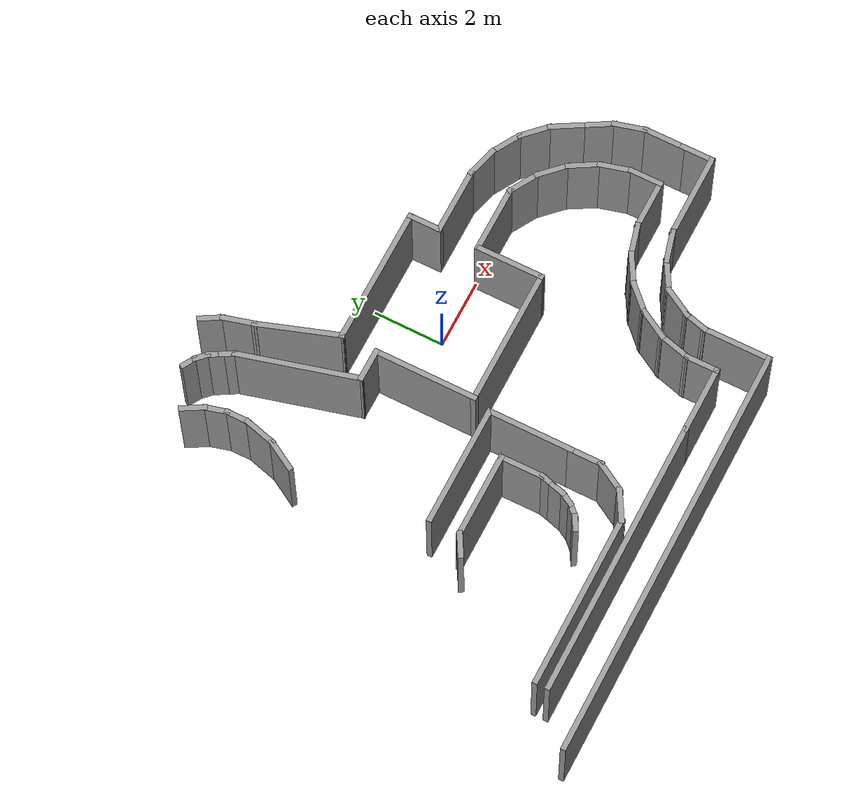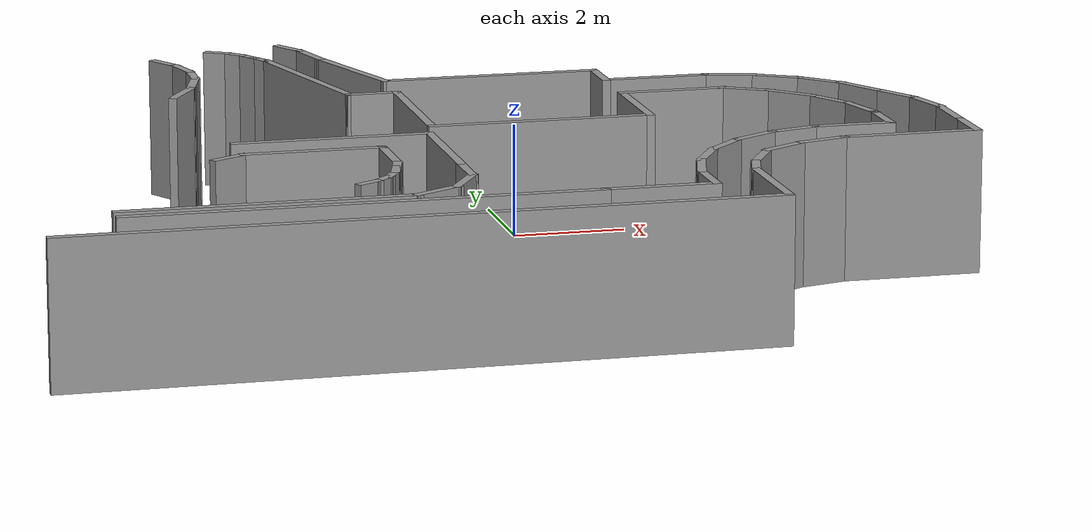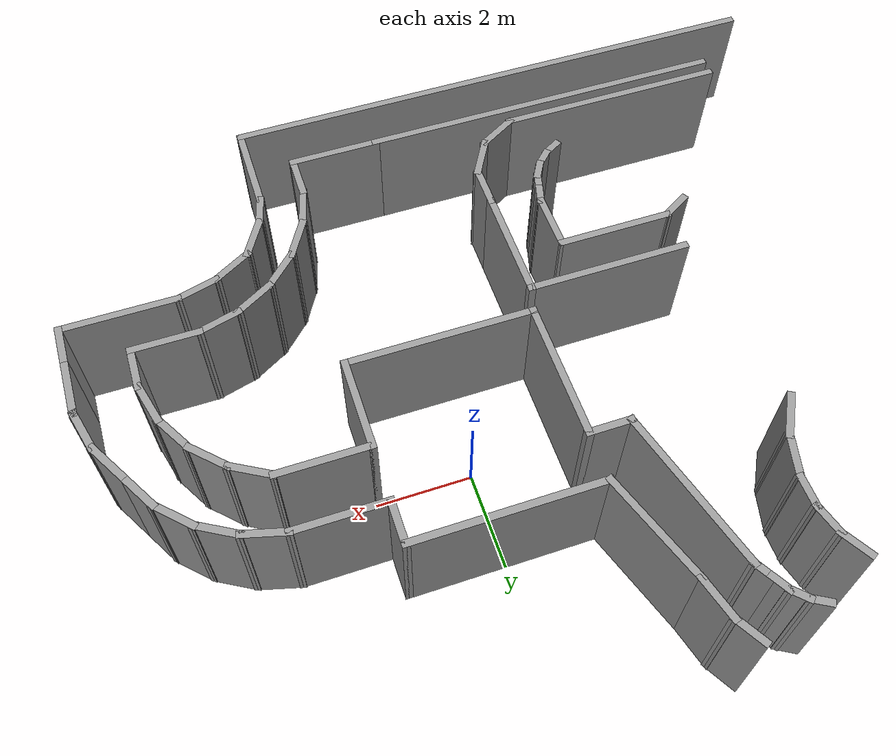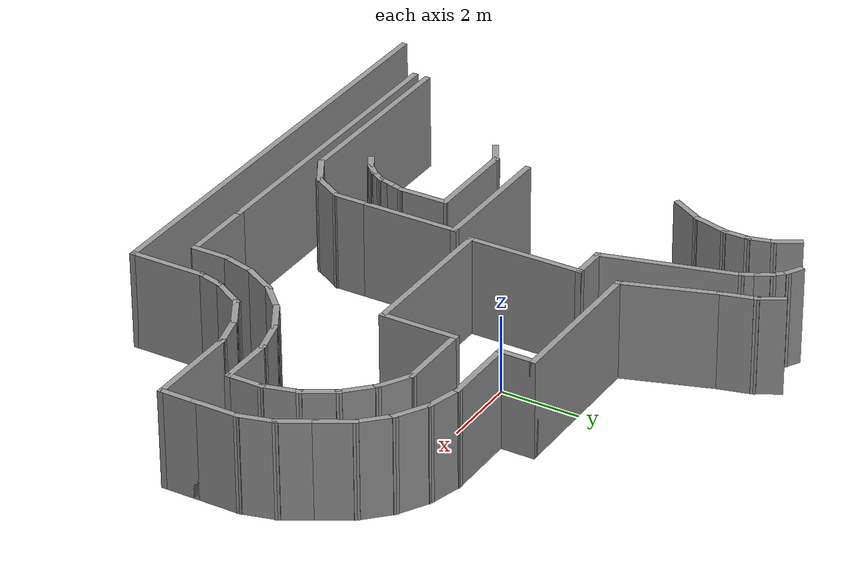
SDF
<sdf version="1.7">
 <model name="labirinth">
  <pose>-1.55942 0.15521 0 0 -0 0</pose>
  <link name="Wall_108">
   <collision name="Wall_108_Collision">
    <geometry><box><size>0.75 0.15 2.5</size></box></geometry>
    <pose>0 0 1.25 0 -0 0</pose>
   </collision>
   <visual name="Wall_108_Visual">
    <pose>0 0 1.25 0 -0 0</pose>
    <geometry><box><size>0.75 0.15 2.5</size></box></geometry>
    <material>
     <script><uri>file://media/materials/scripts/gazebo.material</uri><name>Gazebo/Grey</name></script>
     <ambient>1 1 1 1</ambient>
    </material>
    <meta><layer>0</layer></meta>
   </visual>
   <pose>-1.46149 5.03794 0 0 -0 -1.0472</pose>
  </link>
  <link name="Wall_109">
   <collision name="Wall_109_Collision">
    <geometry><box><size>1 0.15 2.5</size></box></geometry>
    <pose>0 0 1.25 0 -0 0</pose>
   </collision>
   <visual name="Wall_109_Visual">
    <pose>0 0 1.25 0 -0 0</pose>
    <geometry><box><size>1 0.15 2.5</size></box></geometry>
    <material>
     <script><uri>file://media/materials/scripts/gazebo.material</uri><name>Gazebo/Grey</name></script>
     <ambient>1 1 1 1</ambient>
    </material>
    <meta><layer>0</layer></meta>
   </visual>
   <pose>-1.20149 4.36761 0 0 -0 -1.309</pose>
  </link>
  <link name="Wall_11">
   <collision name="Wall_11_Collision">
    <geometry><box><size>1 0.15 2.5</size></box></geometry>
    <pose>0 0 1.25 0 -0 0</pose>
   </collision>
   <visual name="Wall_11_Visual">
    <pose>0 0 1.25 0 -0 0</pose>
    <geometry><box><size>1 0.15 2.5</size></box></geometry>
    <material>
     <script><uri>file://media/materials/scripts/gazebo.material</uri><name>Gazebo/Grey</name></script>
     <ambient>1 1 1 1</ambient>
    </material>
    <meta><layer>0</layer></meta>
   </visual>
   <pose>5.71748 -0.43771 0 0 -0 -0.523599</pose>
  </link>
  <link name="Wall_110">
   <collision name="Wall_110_Collision">
    <geometry><box><size>2.45465 0.15 2.5</size></box></geometry>
    <pose>0 0 1.25 0 -0 0</pose>
   </collision>
   <visual name="Wall_110_Visual">
    <pose>0 0 1.25 0 -0 0</pose>
    <geometry><box><size>2.45465 0.15 2.5</size></box></geometry>
    <material>
     <script><uri>file://media/materials/scripts/gazebo.material</uri><name>Gazebo/Grey</name></script>
     <ambient>1 1 1 1</ambient>
    </material>
    <meta><layer>0</layer></meta>
   </visual>
   <pose>-0.721037 2.86594 0 0 -0 -1.2435</pose>
  </link>
  <link name="Wall_112">
   <collision name="Wall_112_Collision">
    <geometry><box><size>3 0.15 2.5</size></box></geometry>
    <pose>0 0 1.25 0 -0 0</pose>
   </collision>
   <visual name="Wall_112_Visual">
    <pose>0 0 1.25 0 -0 0</pose>
    <geometry><box><size>3 0.15 2.5</size></box></geometry>
    <material>
     <script><uri>file://media/materials/scripts/gazebo.material</uri><name>Gazebo/Grey</name></script>
     <ambient>1 1 1 1</ambient>
    </material>
    <meta><layer>0</layer></meta>
   </visual>
   <pose>-0.350577 -0.65021 0 0 -0 1.5708</pose>
  </link>
  <link name="Wall_113">
   <collision name="Wall_113_Collision">
    <geometry><box><size>1 0.15 2.5</size></box></geometry>
    <pose>0 0 1.25 0 -0 0</pose>
   </collision>
   <visual name="Wall_113_Visual">
    <pose>0 0 1.25 0 -0 0</pose>
    <geometry><box><size>1 0.15 2.5</size></box></geometry>
    <material>
     <script><uri>file://media/materials/scripts/gazebo.material</uri><name>Gazebo/Grey</name></script>
     <ambient>1 1 1 1</ambient>
    </material>
    <meta><layer>0</layer></meta>
   </visual>
   <pose>-0.775577 0.77479 0 0 -0 3.14159</pose>
  </link>
  <link name="Wall_114">
   <collision name="Wall_114_Collision">
    <geometry><box><size>3.5 0.15 2.5</size></box></geometry>
    <pose>0 0 1.25 0 -0 0</pose>
   </collision>
   <visual name="Wall_114_Visual">
    <pose>0 0 1.25 0 -0 0</pose>
    <geometry><box><size>3.5 0.15 2.5</size></box></geometry>
    <material>
     <script><uri>file://media/materials/scripts/gazebo.material</uri><name>Gazebo/Grey</name></script>
     <ambient>1 1 1 1</ambient>
    </material>
    <meta><layer>0</layer></meta>
   </visual>
   <pose>-1.6341 2.39272 0 0 -0 1.8326</pose>
  </link>
  <link name="Wall_115">
   <collision name="Wall_115_Collision">
    <geometry><box><size>0.5 0.15 2.5</size></box></geometry>
    <pose>0 0 1.25 0 -0 0</pose>
   </collision>
   <visual name="Wall_115_Visual">
    <pose>0 0 1.25 0 -0 0</pose>
    <geometry><box><size>0.5 0.15 2.5</size></box></geometry>
    <material>
     <script><uri>file://media/materials/scripts/gazebo.material</uri><name>Gazebo/Grey</name></script>
     <ambient>1 1 1 1</ambient>
    </material>
    <meta><layer>0</layer></meta>
   </visual>
   <pose>-2.15512 4.1622 0 0 -0 2.0944</pose>
  </link>
  <link name="Wall_116">
   <collision name="Wall_116_Collision">
    <geometry><box><size>0.5 0.15 2.5</size></box></geometry>
    <pose>0 0 1.25 0 -0 0</pose>
   </collision>
   <visual name="Wall_116_Visual">
    <pose>0 0 1.25 0 -0 0</pose>
    <geometry><box><size>0.5 0.15 2.5</size></box></geometry>
    <material>
     <script><uri>file://media/materials/scripts/gazebo.material</uri><name>Gazebo/Grey</name></script>
     <ambient>1 1 1 1</ambient>
    </material>
    <meta><layer>0</layer></meta>
   </visual>
   <pose>-2.33012 4.4653 0 0 -0 2.0944</pose>
  </link>
  <link name="Wall_117">
   <collision name="Wall_117_Collision">
    <geometry><box><size>0.5 0.15 2.5</size></box></geometry>
    <pose>0 0 1.25 0 -0 0</pose>
   </collision>
   <visual name="Wall_117_Visual">
    <pose>0 0 1.25 0 -0 0</pose>
    <geometry><box><size>0.5 0.15 2.5</size></box></geometry>
    <material>
     <script><uri>file://media/materials/scripts/gazebo.material</uri><name>Gazebo/Grey</name></script>
     <ambient>1 1 1 1</ambient>
    </material>
    <meta><layer>0</layer></meta>
   </visual>
   <pose>-2.54136 4.7406 0 0 -0 2.35619</pose>
  </link>
  <link name="Wall_118">
   <collision name="Wall_118_Collision">
    <geometry><box><size>0.5 0.15 2.5</size></box></geometry>
    <pose>0 0 1.25 0 -0 0</pose>
   </collision>
   <visual name="Wall_118_Visual">
    <pose>0 0 1.25 0 -0 0</pose>
    <geometry><box><size>0.5 0.15 2.5</size></box></geometry>
    <material>
     <script><uri>file://media/materials/scripts/gazebo.material</uri><name>Gazebo/Grey</name></script>
     <ambient>1 1 1 1</ambient>
    </material>
    <meta><layer>0</layer></meta>
   </visual>
   <pose>-2.81666 4.95185 0 0 -0 2.61799</pose>
  </link>
  <link name="Wall_12">
   <collision name="Wall_12_Collision">
    <geometry><box><size>1 0.15 2.5</size></box></geometry>
    <pose>0 0 1.25 0 -0 0</pose>
   </collision>
   <visual name="Wall_12_Visual">
    <pose>0 0 1.25 0 -0 0</pose>
    <geometry><box><size>1 0.15 2.5</size></box></geometry>
    <material>
     <script><uri>file://media/materials/scripts/gazebo.material</uri><name>Gazebo/Grey</name></script>
     <ambient>1 1 1 1</ambient>
    </material>
    <meta><layer>0</layer></meta>
   </visual>
   <pose>6.38607 -0.95073 0 0 -0 -0.785398</pose>
  </link>
  <link name="Wall_123">
   <collision name="Wall_123_Collision">
    <geometry><box><size>0.75 0.15 2.5</size></box></geometry>
    <pose>0 0 1.25 0 -0 0</pose>
   </collision>
   <visual name="Wall_123_Visual">
    <pose>0 0 1.25 0 -0 0</pose>
    <geometry><box><size>0.75 0.15 2.5</size></box></geometry>
    <material>
     <script><uri>file://media/materials/scripts/gazebo.material</uri><name>Gazebo/Grey</name></script>
     <ambient>1 1 1 1</ambient>
    </material>
    <meta><layer>0</layer></meta>
   </visual>
   <pose>-3.90148 4.24415 0 0 -0 -1.0472</pose>
  </link>
  <link name="Wall_124">
   <collision name="Wall_124_Collision">
    <geometry><box><size>0.75 0.15 2.5</size></box></geometry>
    <pose>0 0 1.25 0 -0 0</pose>
   </collision>
   <visual name="Wall_124_Visual">
    <pose>0 0 1.25 0 -0 0</pose>
    <geometry><box><size>0.75 0.15 2.5</size></box></geometry>
    <material>
     <script><uri>file://media/materials/scripts/gazebo.material</uri><name>Gazebo/Grey</name></script>
     <ambient>1 1 1 1</ambient>
    </material>
    <meta><layer>0</layer></meta>
   </visual>
   <pose>-3.67384 3.69457 0 0 -0 -1.309</pose>
  </link>
  <link name="Wall_125">
   <collision name="Wall_125_Collision">
    <geometry><box><size>0.75 0.15 2.5</size></box></geometry>
    <pose>0 0 1.25 0 -0 0</pose>
   </collision>
   <visual name="Wall_125_Visual">
    <pose>0 0 1.25 0 -0 0</pose>
    <geometry><box><size>0.75 0.15 2.5</size></box></geometry>
    <material>
     <script><uri>file://media/materials/scripts/gazebo.material</uri><name>Gazebo/Grey</name></script>
     <ambient>1 1 1 1</ambient>
    </material>
    <meta><layer>0</layer></meta>
   </visual>
   <pose>-3.59619 3.10479 0 0 -0 -1.5708</pose>
  </link>
  <link name="Wall_126">
   <collision name="Wall_126_Collision">
    <geometry><box><size>1 0.15 2.5</size></box></geometry>
    <pose>0 0 1.25 0 -0 0</pose>
   </collision>
   <visual name="Wall_126_Visual">
    <pose>0 0 1.25 0 -0 0</pose>
    <geometry><box><size>1 0.15 2.5</size></box></geometry>
    <material>
     <script><uri>file://media/materials/scripts/gazebo.material</uri><name>Gazebo/Grey</name></script>
     <ambient>1 1 1 1</ambient>
    </material>
    <meta><layer>0</layer></meta>
   </visual>
   <pose>-3.70619 2.39427 0 0 -0 -1.8326</pose>
  </link>
  <link name="Wall_127">
   <collision name="Wall_127_Collision">
    <geometry><box><size>1 0.15 2.5</size></box></geometry>
    <pose>0 0 1.25 0 -0 0</pose>
   </collision>
   <visual name="Wall_127_Visual">
    <pose>0 0 1.25 0 -0 0</pose>
    <geometry><box><size>1 0.15 2.5</size></box></geometry>
    <material>
     <script><uri>file://media/materials/scripts/gazebo.material</uri><name>Gazebo/Grey</name></script>
     <ambient>1 1 1 1</ambient>
    </material>
    <meta><layer>0</layer></meta>
   </visual>
   <pose>-4.02869 1.61569 0 0 -0 -2.0944</pose>
  </link>
  <link name="Wall_13">
   <collision name="Wall_13_Collision">
    <geometry><box><size>1 0.15 2.5</size></box></geometry>
    <pose>0 0 1.25 0 -0 0</pose>
   </collision>
   <visual name="Wall_13_Visual">
    <pose>0 0 1.25 0 -0 0</pose>
    <geometry><box><size>1 0.15 2.5</size></box></geometry>
    <material>
     <script><uri>file://media/materials/scripts/gazebo.material</uri><name>Gazebo/Grey</name></script>
     <ambient>1 1 1 1</ambient>
    </material>
    <meta><layer>0</layer></meta>
   </visual>
   <pose>6.89909 -1.61931 0 0 -0 -1.0472</pose>
  </link>
  <link name="Wall_14">
   <collision name="Wall_14_Collision">
    <geometry><box><size>1 0.15 2.5</size></box></geometry>
    <pose>0 0 1.25 0 -0 0</pose>
   </collision>
   <visual name="Wall_14_Visual">
    <pose>0 0 1.25 0 -0 0</pose>
    <geometry><box><size>1 0.15 2.5</size></box></geometry>
    <material>
     <script><uri>file://media/materials/scripts/gazebo.material</uri><name>Gazebo/Grey</name></script>
     <ambient>1 1 1 1</ambient>
    </material>
    <meta><layer>0</layer></meta>
   </visual>
   <pose>7.22158 -2.39789 0 0 -0 -1.309</pose>
  </link>
  <link name="Wall_15">
   <collision name="Wall_15_Collision">
    <geometry><box><size>1 0.15 2.5</size></box></geometry>
    <pose>0 0 1.25 0 -0 0</pose>
   </collision>
   <visual name="Wall_15_Visual">
    <pose>0 0 1.25 0 -0 0</pose>
    <geometry><box><size>1 0.15 2.5</size></box></geometry>
    <material>
     <script><uri>file://media/materials/scripts/gazebo.material</uri><name>Gazebo/Grey</name></script>
     <ambient>1 1 1 1</ambient>
    </material>
    <meta><layer>0</layer></meta>
   </visual>
   <pose>7.33158 -3.23341 0 0 -0 -1.5708</pose>
  </link>
  <link name="Wall_16">
   <collision name="Wall_16_Collision">
    <geometry><box><size>1.5 0.15 2.5</size></box></geometry>
    <pose>0 0 1.25 0 -0 0</pose>
   </collision>
   <visual name="Wall_16_Visual">
    <pose>0 0 1.25 0 -0 0</pose>
    <geometry><box><size>1.5 0.15 2.5</size></box></geometry>
    <material>
     <script><uri>file://media/materials/scripts/gazebo.material</uri><name>Gazebo/Grey</name></script>
     <ambient>1 1 1 1</ambient>
    </material>
    <meta><layer>0</layer></meta>
   </visual>
   <pose>6.65658 -3.65841 0 0 -0 3.14159</pose>
  </link>
  <link name="Wall_17">
   <collision name="Wall_17_Collision">
    <geometry><box><size>1 0.15 2.5</size></box></geometry>
    <pose>0 0 1.25 0 -0 0</pose>
   </collision>
   <visual name="Wall_17_Visual">
    <pose>0 0 1.25 0 -0 0</pose>
    <geometry><box><size>1 0.15 2.5</size></box></geometry>
    <material>
     <script><uri>file://media/materials/scripts/gazebo.material</uri><name>Gazebo/Grey</name></script>
     <ambient>1 1 1 1</ambient>
    </material>
    <meta><layer>0</layer></meta>
   </visual>
   <pose>5.57106 -3.76841 0 0 -0 -2.87979</pose>
  </link>
  <link name="Wall_18">
   <collision name="Wall_18_Collision">
    <geometry><box><size>1 0.15 2.5</size></box></geometry>
    <pose>0 0 1.25 0 -0 0</pose>
   </collision>
   <visual name="Wall_18_Visual">
    <pose>0 0 1.25 0 -0 0</pose>
    <geometry><box><size>1 0.15 2.5</size></box></geometry>
    <material>
     <script><uri>file://media/materials/scripts/gazebo.material</uri><name>Gazebo/Grey</name></script>
     <ambient>1 1 1 1</ambient>
    </material>
    <meta><layer>0</layer></meta>
   </visual>
   <pose>4.79248 -4.09091 0 0 -0 -2.61799</pose>
  </link>
  <link name="Wall_19">
   <collision name="Wall_19_Collision">
    <geometry><box><size>1 0.15 2.5</size></box></geometry>
    <pose>0 0 1.25 0 -0 0</pose>
   </collision>
   <visual name="Wall_19_Visual">
    <pose>0 0 1.25 0 -0 0</pose>
    <geometry><box><size>1 0.15 2.5</size></box></geometry>
    <material>
     <script><uri>file://media/materials/scripts/gazebo.material</uri><name>Gazebo/Grey</name></script>
     <ambient>1 1 1 1</ambient>
    </material>
    <meta><layer>0</layer></meta>
   </visual>
   <pose>4.1239 -4.60393 0 0 -0 -2.35619</pose>
  </link>
  <link name="Wall_2">
   <collision name="Wall_2_Collision">
    <geometry><box><size>4 0.15 2.5</size></box></geometry>
    <pose>0 0 1.25 0 -0 0</pose>
   </collision>
   <visual name="Wall_2_Visual">
    <pose>0 0 1.25 0 -0 0</pose>
    <geometry><box><size>4 0.15 2.5</size></box></geometry>
    <material>
     <script><uri>file://media/materials/scripts/gazebo.material</uri><name>Gazebo/Grey</name></script>
     <ambient>1 1 1 1</ambient>
    </material>
    <meta><layer>0</layer></meta>
   </visual>
   <pose>1.57442 1.77479 0 0 -0 0</pose>
  </link>
  <link name="Wall_20">
   <collision name="Wall_20_Collision">
    <geometry><box><size>1 0.15 2.5</size></box></geometry>
    <pose>0 0 1.25 0 -0 0</pose>
   </collision>
   <visual name="Wall_20_Visual">
    <pose>0 0 1.25 0 -0 0</pose>
    <geometry><box><size>1 0.15 2.5</size></box></geometry>
    <material>
     <script><uri>file://media/materials/scripts/gazebo.material</uri><name>Gazebo/Grey</name></script>
     <ambient>1 1 1 1</ambient>
    </material>
    <meta><layer>0</layer></meta>
   </visual>
   <pose>3.61088 -5.27251 0 0 -0 -2.0944</pose>
  </link>
  <link name="Wall_21">
   <collision name="Wall_21_Collision">
    <geometry><box><size>1 0.15 2.5</size></box></geometry>
    <pose>0 0 1.25 0 -0 0</pose>
   </collision>
   <visual name="Wall_21_Visual">
    <pose>0 0 1.25 0 -0 0</pose>
    <geometry><box><size>1 0.15 2.5</size></box></geometry>
    <material>
     <script><uri>file://media/materials/scripts/gazebo.material</uri><name>Gazebo/Grey</name></script>
     <ambient>1 1 1 1</ambient>
    </material>
    <meta><layer>0</layer></meta>
   </visual>
   <pose>3.28838 -6.05109 0 0 -0 -1.8326</pose>
  </link>
  <link name="Wall_22">
   <collision name="Wall_22_Collision">
    <geometry><box><size>1 0.15 2.5</size></box></geometry>
    <pose>0 0 1.25 0 -0 0</pose>
   </collision>
   <visual name="Wall_22_Visual">
    <pose>0 0 1.25 0 -0 0</pose>
    <geometry><box><size>1 0.15 2.5</size></box></geometry>
    <material>
     <script><uri>file://media/materials/scripts/gazebo.material</uri><name>Gazebo/Grey</name></script>
     <ambient>1 1 1 1</ambient>
    </material>
    <meta><layer>0</layer></meta>
   </visual>
   <pose>3.17839 -6.8866 0 0 -0 -1.5708</pose>
  </link>
  <link name="Wall_23">
   <collision name="Wall_23_Collision">
    <geometry><box><size>2 0.15 2.5</size></box></geometry>
    <pose>0 0 1.25 0 -0 0</pose>
   </collision>
   <visual name="Wall_23_Visual">
    <pose>0 0 1.25 0 -0 0</pose>
    <geometry><box><size>2 0.15 2.5</size></box></geometry>
    <material>
     <script><uri>file://media/materials/scripts/gazebo.material</uri><name>Gazebo/Grey</name></script>
     <ambient>1 1 1 1</ambient>
    </material>
    <meta><layer>0</layer></meta>
   </visual>
   <pose>2.25339 -7.3116 0 0 -0 3.14159</pose>
  </link>
  <link name="Wall_24">
   <collision name="Wall_24_Collision">
    <geometry><box><size>8 0.15 2.5</size></box></geometry>
    <pose>0 0 1.25 0 -0 0</pose>
   </collision>
   <visual name="Wall_24_Visual">
    <pose>0 0 1.25 0 -0 0</pose>
    <geometry><box><size>8 0.15 2.5</size></box></geometry>
    <material>
     <script><uri>file://media/materials/scripts/gazebo.material</uri><name>Gazebo/Grey</name></script>
     <ambient>1 1 1 1</ambient>
    </material>
    <meta><layer>0</layer></meta>
   </visual>
   <pose>-2.59661 -7.3116 0 0 -0 3.14159</pose>
  </link>
  <link name="Wall_26">
   <collision name="Wall_26_Collision">
    <geometry><box><size>5 0.15 2.5</size></box></geometry>
    <pose>0 0 1.25 0 -0 0</pose>
   </collision>
   <visual name="Wall_26_Visual">
    <pose>0 0 1.25 0 -0 0</pose>
    <geometry><box><size>5 0.15 2.5</size></box></geometry>
    <material>
     <script><uri>file://media/materials/scripts/gazebo.material</uri><name>Gazebo/Grey</name></script>
     <ambient>1 1 1 1</ambient>
    </material>
    <meta><layer>0</layer></meta>
   </visual>
   <pose>-4.09661 -6.9616 0 0 -0 0</pose>
  </link>
  <link name="Wall_27">
   <collision name="Wall_27_Collision">
    <geometry><box><size>1 0.15 2.5</size></box></geometry>
    <pose>0 0 1.25 0 -0 0</pose>
   </collision>
   <visual name="Wall_27_Visual">
    <pose>0 0 1.25 0 -0 0</pose>
    <geometry><box><size>1 0.15 2.5</size></box></geometry>
    <material>
     <script><uri>file://media/materials/scripts/gazebo.material</uri><name>Gazebo/Grey</name></script>
     <ambient>1 1 1 1</ambient>
    </material>
    <meta><layer>0</layer></meta>
   </visual>
   <pose>-1.30355 -6.7491 0 0 -0 0.523599</pose>
  </link>
  <link name="Wall_28">
   <collision name="Wall_28_Collision">
    <geometry><box><size>1 0.15 2.5</size></box></geometry>
    <pose>0 0 1.25 0 -0 0</pose>
   </collision>
   <visual name="Wall_28_Visual">
    <pose>0 0 1.25 0 -0 0</pose>
    <geometry><box><size>1 0.15 2.5</size></box></geometry>
    <material>
     <script><uri>file://media/materials/scripts/gazebo.material</uri><name>Gazebo/Grey</name></script>
     <ambient>1 1 1 1</ambient>
    </material>
    <meta><layer>0</layer></meta>
   </visual>
   <pose>-0.722992 -6.16854 0 0 -0 1.0472</pose>
  </link>
  <link name="Wall_29">
   <collision name="Wall_29_Collision">
    <geometry><box><size>1 0.15 2.5</size></box></geometry>
    <pose>0 0 1.25 0 -0 0</pose>
   </collision>
   <visual name="Wall_29_Visual">
    <pose>0 0 1.25 0 -0 0</pose>
    <geometry><box><size>1 0.15 2.5</size></box></geometry>
    <material>
     <script><uri>file://media/materials/scripts/gazebo.material</uri><name>Gazebo/Grey</name></script>
     <ambient>1 1 1 1</ambient>
    </material>
    <meta><layer>0</layer></meta>
   </visual>
   <pose>-0.510492 -5.37548 0 0 -0 1.5708</pose>
  </link>
  <link name="Wall_3">
   <collision name="Wall_3_Collision">
    <geometry><box><size>1 0.15 2.5</size></box></geometry>
    <pose>0 0 1.25 0 -0 0</pose>
   </collision>
   <visual name="Wall_3_Visual">
    <pose>0 0 1.25 0 -0 0</pose>
    <geometry><box><size>1 0.15 2.5</size></box></geometry>
    <material>
     <script><uri>file://media/materials/scripts/gazebo.material</uri><name>Gazebo/Grey</name></script>
     <ambient>1 1 1 1</ambient>
    </material>
    <meta><layer>0</layer></meta>
   </visual>
   <pose>3.49942 1.34979 0 0 -0 -1.5708</pose>
  </link>
  <link name="Wall_30">
   <collision name="Wall_30_Collision">
    <geometry><box><size>2.5 0.15 2.5</size></box></geometry>
    <pose>0 0 1.25 0 -0 0</pose>
   </collision>
   <visual name="Wall_30_Visual">
    <pose>0 0 1.25 0 -0 0</pose>
    <geometry><box><size>2.5 0.15 2.5</size></box></geometry>
    <material>
     <script><uri>file://media/materials/scripts/gazebo.material</uri><name>Gazebo/Grey</name></script>
     <ambient>1 1 1 1</ambient>
    </material>
    <meta><layer>0</layer></meta>
   </visual>
   <pose>-0.510492 -3.77548 0 0 -0 1.5708</pose>
  </link>
  <link name="Wall_31">
   <collision name="Wall_31_Collision">
    <geometry><box><size>3.5 0.15 2.5</size></box></geometry>
    <pose>0 0 1.25 0 -0 0</pose>
   </collision>
   <visual name="Wall_31_Visual">
    <pose>0 0 1.25 0 -0 0</pose>
    <geometry><box><size>3.5 0.15 2.5</size></box></geometry>
    <material>
     <script><uri>file://media/materials/scripts/gazebo.material</uri><name>Gazebo/Grey</name></script>
     <ambient>1 1 1 1</ambient>
    </material>
    <meta><layer>0</layer></meta>
   </visual>
   <pose>-2.18549 -2.60048 0 0 -0 3.14159</pose>
  </link>
  <link name="Wall_33">
   <collision name="Wall_33_Collision">
    <geometry><box><size>2.5 0.15 2.5</size></box></geometry>
    <pose>0 0 1.25 0 -0 0</pose>
   </collision>
   <visual name="Wall_33_Visual">
    <pose>0 0 1.25 0 -0 0</pose>
    <geometry><box><size>2.5 0.15 2.5</size></box></geometry>
    <material>
     <script><uri>file://media/materials/scripts/gazebo.material</uri><name>Gazebo/Grey</name></script>
     <ambient>1 1 1 1</ambient>
    </material>
    <meta><layer>0</layer></meta>
   </visual>
   <pose>-2.68549 -3.45048 0 0 -0 0</pose>
  </link>
  <link name="Wall_37">
   <collision name="Wall_37_Collision">
    <geometry><box><size>1 0.15 2.5</size></box></geometry>
    <pose>0 0 1.25 0 -0 0</pose>
   </collision>
   <visual name="Wall_37_Visual">
    <pose>0 0 1.25 0 -0 0</pose>
    <geometry><box><size>1 0.15 2.5</size></box></geometry>
    <material>
     <script><uri>file://media/materials/scripts/gazebo.material</uri><name>Gazebo/Grey</name></script>
     <ambient>1 1 1 1</ambient>
    </material>
    <meta><layer>0</layer></meta>
   </visual>
   <pose>5.75994 0.814792 0 0 -0 -0.261799</pose>
  </link>
  <link name="Wall_38">
   <collision name="Wall_38_Collision">
    <geometry><box><size>1 0.15 2.5</size></box></geometry>
    <pose>0 0 1.25 0 -0 0</pose>
   </collision>
   <visual name="Wall_38_Visual">
    <pose>0 0 1.25 0 -0 0</pose>
    <geometry><box><size>1 0.15 2.5</size></box></geometry>
    <material>
     <script><uri>file://media/materials/scripts/gazebo.material</uri><name>Gazebo/Grey</name></script>
     <ambient>1 1 1 1</ambient>
    </material>
    <meta><layer>0</layer></meta>
   </visual>
   <pose>6.53852 0.492294 0 0 -0 -0.523599</pose>
  </link>
  <link name="Wall_39">
   <collision name="Wall_39_Collision">
    <geometry><box><size>1 0.15 2.5</size></box></geometry>
    <pose>0 0 1.25 0 -0 0</pose>
   </collision>
   <visual name="Wall_39_Visual">
    <pose>0 0 1.25 0 -0 0</pose>
    <geometry><box><size>1 0.15 2.5</size></box></geometry>
    <material>
     <script><uri>file://media/materials/scripts/gazebo.material</uri><name>Gazebo/Grey</name></script>
     <ambient>1 1 1 1</ambient>
    </material>
    <meta><layer>0</layer></meta>
   </visual>
   <pose>7.2071 -0.020726 0 0 -0 -0.785398</pose>
  </link>
  <link name="Wall_4">
   <collision name="Wall_4_Collision">
    <geometry><box><size>2 0.15 2.5</size></box></geometry>
    <pose>0 0 1.25 0 -0 0</pose>
   </collision>
   <visual name="Wall_4_Visual">
    <pose>0 0 1.25 0 -0 0</pose>
    <geometry><box><size>2 0.15 2.5</size></box></geometry>
    <material>
     <script><uri>file://media/materials/scripts/gazebo.material</uri><name>Gazebo/Grey</name></script>
     <ambient>1 1 1 1</ambient>
    </material>
    <meta><layer>0</layer></meta>
   </visual>
   <pose>4.42442 0.924791 0 0 -0 0</pose>
  </link>
  <link name="Wall_43">
   <collision name="Wall_43_Collision">
    <geometry><box><size>1 0.15 2.5</size></box></geometry>
    <pose>0 0 1.25 0 -0 0</pose>
   </collision>
   <visual name="Wall_43_Visual">
    <pose>0 0 1.25 0 -0 0</pose>
    <geometry><box><size>1 0.15 2.5</size></box></geometry>
    <material>
     <script><uri>file://media/materials/scripts/gazebo.material</uri><name>Gazebo/Grey</name></script>
     <ambient>1 1 1 1</ambient>
    </material>
    <meta><layer>0</layer></meta>
   </visual>
   <pose>7.72012 -0.689307 0 0 -0 -1.0472</pose>
  </link>
  <link name="Wall_44">
   <collision name="Wall_44_Collision">
    <geometry><box><size>1 0.15 2.5</size></box></geometry>
    <pose>0 0 1.25 0 -0 0</pose>
   </collision>
   <visual name="Wall_44_Visual">
    <pose>0 0 1.25 0 -0 0</pose>
    <geometry><box><size>1 0.15 2.5</size></box></geometry>
    <material>
     <script><uri>file://media/materials/scripts/gazebo.material</uri><name>Gazebo/Grey</name></script>
     <ambient>1 1 1 1</ambient>
    </material>
    <meta><layer>0</layer></meta>
   </visual>
   <pose>8.14512 -1.42543 0 0 -0 -1.0472</pose>
  </link>
  <link name="Wall_45">
   <collision name="Wall_45_Collision">
    <geometry><box><size>1 0.15 2.5</size></box></geometry>
    <pose>0 0 1.25 0 -0 0</pose>
   </collision>
   <visual name="Wall_45_Visual">
    <pose>0 0 1.25 0 -0 0</pose>
    <geometry><box><size>1 0.15 2.5</size></box></geometry>
    <material>
     <script><uri>file://media/materials/scripts/gazebo.material</uri><name>Gazebo/Grey</name></script>
     <ambient>1 1 1 1</ambient>
    </material>
    <meta><layer>0</layer></meta>
   </visual>
   <pose>8.46762 -2.20401 0 0 -0 -1.309</pose>
  </link>
  <link name="Wall_46">
   <collision name="Wall_46_Collision">
    <geometry><box><size>1.25 0.15 2.5</size></box></geometry>
    <pose>0 0 1.25 0 -0 0</pose>
   </collision>
   <visual name="Wall_46_Visual">
    <pose>0 0 1.25 0 -0 0</pose>
    <geometry><box><size>1.25 0.15 2.5</size></box></geometry>
    <material>
     <script><uri>file://media/materials/scripts/gazebo.material</uri><name>Gazebo/Grey</name></script>
     <ambient>1 1 1 1</ambient>
    </material>
    <meta><layer>0</layer></meta>
   </visual>
   <pose>8.57762 -3.16453 0 0 -0 -1.5708</pose>
  </link>
  <link name="Wall_48">
   <collision name="Wall_48_Collision">
    <geometry><box><size>1 0.15 2.5</size></box></geometry>
    <pose>0 0 1.25 0 -0 0</pose>
   </collision>
   <visual name="Wall_48_Visual">
    <pose>0 0 1.25 0 -0 0</pose>
    <geometry><box><size>1 0.15 2.5</size></box></geometry>
    <material>
     <script><uri>file://media/materials/scripts/gazebo.material</uri><name>Gazebo/Grey</name></script>
     <ambient>1 1 1 1</ambient>
    </material>
    <meta><layer>0</layer></meta>
   </visual>
   <pose>8.57762 -4.13953 0 0 -0 -1.5708</pose>
  </link>
  <link name="Wall_49">
   <collision name="Wall_49_Collision">
    <geometry><box><size>2.5 0.15 2.5</size></box></geometry>
    <pose>0 0 1.25 0 -0 0</pose>
   </collision>
   <visual name="Wall_49_Visual">
    <pose>0 0 1.25 0 -0 0</pose>
    <geometry><box><size>2.5 0.15 2.5</size></box></geometry>
    <material>
     <script><uri>file://media/materials/scripts/gazebo.material</uri><name>Gazebo/Grey</name></script>
     <ambient>1 1 1 1</ambient>
    </material>
    <meta><layer>0</layer></meta>
   </visual>
   <pose>7.40262 -4.56453 0 0 -0 3.14159</pose>
  </link>
  <link name="Wall_50">
   <collision name="Wall_50_Collision">
    <geometry><box><size>1 0.15 2.5</size></box></geometry>
    <pose>0 0 1.25 0 -0 0</pose>
   </collision>
   <visual name="Wall_50_Visual">
    <pose>0 0 1.25 0 -0 0</pose>
    <geometry><box><size>1 0.15 2.5</size></box></geometry>
    <material>
     <script><uri>file://media/materials/scripts/gazebo.material</uri><name>Gazebo/Grey</name></script>
     <ambient>1 1 1 1</ambient>
    </material>
    <meta><layer>0</layer></meta>
   </visual>
   <pose>5.8171 -4.67453 0 0 -0 -2.87979</pose>
  </link>
  <link name="Wall_51">
   <collision name="Wall_51_Collision">
    <geometry><box><size>1 0.15 2.5</size></box></geometry>
    <pose>0 0 1.25 0 -0 0</pose>
   </collision>
   <visual name="Wall_51_Visual">
    <pose>0 0 1.25 0 -0 0</pose>
    <geometry><box><size>1 0.15 2.5</size></box></geometry>
    <material>
     <script><uri>file://media/materials/scripts/gazebo.material</uri><name>Gazebo/Grey</name></script>
     <ambient>1 1 1 1</ambient>
    </material>
    <meta><layer>0</layer></meta>
   </visual>
   <pose>5.03852 -4.99702 0 0 -0 -2.61799</pose>
  </link>
  <link name="Wall_52">
   <collision name="Wall_52_Collision">
    <geometry><box><size>1 0.15 2.5</size></box></geometry>
    <pose>0 0 1.25 0 -0 0</pose>
   </collision>
   <visual name="Wall_52_Visual">
    <pose>0 0 1.25 0 -0 0</pose>
    <geometry><box><size>1 0.15 2.5</size></box></geometry>
    <material>
     <script><uri>file://media/materials/scripts/gazebo.material</uri><name>Gazebo/Grey</name></script>
     <ambient>1 1 1 1</ambient>
    </material>
    <meta><layer>0</layer></meta>
   </visual>
   <pose>4.45796 -5.57758 0 0 -0 -2.0944</pose>
  </link>
  <link name="Wall_53">
   <collision name="Wall_53_Collision">
    <geometry><box><size>0.75 0.15 2.5</size></box></geometry>
    <pose>0 0 1.25 0 -0 0</pose>
   </collision>
   <visual name="Wall_53_Visual">
    <pose>0 0 1.25 0 -0 0</pose>
    <geometry><box><size>0.75 0.15 2.5</size></box></geometry>
    <material>
     <script><uri>file://media/materials/scripts/gazebo.material</uri><name>Gazebo/Grey</name></script>
     <ambient>1 1 1 1</ambient>
    </material>
    <meta><layer>0</layer></meta>
   </visual>
   <pose>4.16782 -6.23542 0 0 -0 -1.8326</pose>
  </link>
  <link name="Wall_54">
   <collision name="Wall_54_Collision">
    <geometry><box><size>2 0.15 2.5</size></box></geometry>
    <pose>0 0 1.25 0 -0 0</pose>
   </collision>
   <visual name="Wall_54_Visual">
    <pose>0 0 1.25 0 -0 0</pose>
    <geometry><box><size>2 0.15 2.5</size></box></geometry>
    <material>
     <script><uri>file://media/materials/scripts/gazebo.material</uri><name>Gazebo/Grey</name></script>
     <ambient>1 1 1 1</ambient>
    </material>
    <meta><layer>0</layer></meta>
   </visual>
   <pose>4.09017 -7.4502 0 0 -0 -1.5708</pose>
  </link>
  <link name="Wall_55">
   <collision name="Wall_55_Collision">
    <geometry><box><size>12 0.15 2.5</size></box></geometry>
    <pose>0 0 1.25 0 -0 0</pose>
   </collision>
   <visual name="Wall_55_Visual">
    <pose>0 0 1.25 0 -0 0</pose>
    <geometry><box><size>12 0.15 2.5</size></box></geometry>
    <material>
     <script><uri>file://media/materials/scripts/gazebo.material</uri><name>Gazebo/Grey</name></script>
     <ambient>1 1 1 1</ambient>
    </material>
    <meta><layer>0</layer></meta>
   </visual>
   <pose>-1.83483 -8.3752 0 0 -0 3.14159</pose>
  </link>
  <link name="Wall_58">
   <collision name="Wall_58_Collision">
    <geometry><box><size>0.5 0.15 2.5</size></box></geometry>
    <pose>0 0 1.25 0 -0 0</pose>
   </collision>
   <visual name="Wall_58_Visual">
    <pose>0 0 1.25 0 -0 0</pose>
    <geometry><box><size>0.5 0.15 2.5</size></box></geometry>
    <material>
     <script><uri>file://media/materials/scripts/gazebo.material</uri><name>Gazebo/Grey</name></script>
     <ambient>1 1 1 1</ambient>
    </material>
    <meta><layer>0</layer></meta>
   </visual>
   <pose>-2.25828 -5.9377 0 0 -0 0.523599</pose>
  </link>
  <link name="Wall_59">
   <collision name="Wall_59_Collision">
    <geometry><box><size>0.5 0.15 2.5</size></box></geometry>
    <pose>0 0 1.25 0 -0 0</pose>
   </collision>
   <visual name="Wall_59_Visual">
    <pose>0 0 1.25 0 -0 0</pose>
    <geometry><box><size>0.5 0.15 2.5</size></box></geometry>
    <material>
     <script><uri>file://media/materials/scripts/gazebo.material</uri><name>Gazebo/Grey</name></script>
     <ambient>1 1 1 1</ambient>
    </material>
    <meta><layer>0</layer></meta>
   </visual>
   <pose>-1.98298 -5.72646 0 0 -0 0.785398</pose>
  </link>
  <link name="Wall_6">
   <collision name="Wall_6_Collision">
    <geometry><box><size>4 0.15 2.5</size></box></geometry>
    <pose>0 0 1.25 0 -0 0</pose>
   </collision>
   <visual name="Wall_6_Visual">
    <pose>0 0 1.25 0 -0 0</pose>
    <geometry><box><size>4 0.15 2.5</size></box></geometry>
    <material>
     <script><uri>file://media/materials/scripts/gazebo.material</uri><name>Gazebo/Grey</name></script>
     <ambient>1 1 1 1</ambient>
    </material>
    <meta><layer>0</layer></meta>
   </visual>
   <pose>1.57442 -2.07521 0 0 -0 0</pose>
  </link>
  <link name="Wall_60">
   <collision name="Wall_60_Collision">
    <geometry><box><size>0.5 0.15 2.5</size></box></geometry>
    <pose>0 0 1.25 0 -0 0</pose>
   </collision>
   <visual name="Wall_60_Visual">
    <pose>0 0 1.25 0 -0 0</pose>
    <geometry><box><size>0.5 0.15 2.5</size></box></geometry>
    <material>
     <script><uri>file://media/materials/scripts/gazebo.material</uri><name>Gazebo/Grey</name></script>
     <ambient>1 1 1 1</ambient>
    </material>
    <meta><layer>0</layer></meta>
   </visual>
   <pose>-1.77174 -5.45116 0 0 -0 1.0472</pose>
  </link>
  <link name="Wall_61">
   <collision name="Wall_61_Collision">
    <geometry><box><size>0.5 0.15 2.5</size></box></geometry>
    <pose>0 0 1.25 0 -0 0</pose>
   </collision>
   <visual name="Wall_61_Visual">
    <pose>0 0 1.25 0 -0 0</pose>
    <geometry><box><size>0.5 0.15 2.5</size></box></geometry>
    <material>
     <script><uri>file://media/materials/scripts/gazebo.material</uri><name>Gazebo/Grey</name></script>
     <ambient>1 1 1 1</ambient>
    </material>
    <meta><layer>0</layer></meta>
   </visual>
   <pose>-1.63894 -5.13057 0 0 -0 1.309</pose>
  </link>
  <link name="Wall_62">
   <collision name="Wall_62_Collision">
    <geometry><box><size>0.5 0.15 2.5</size></box></geometry>
    <pose>0 0 1.25 0 -0 0</pose>
   </collision>
   <visual name="Wall_62_Visual">
    <pose>0 0 1.25 0 -0 0</pose>
    <geometry><box><size>0.5 0.15 2.5</size></box></geometry>
    <material>
     <script><uri>file://media/materials/scripts/gazebo.material</uri><name>Gazebo/Grey</name></script>
     <ambient>1 1 1 1</ambient>
    </material>
    <meta><layer>0</layer></meta>
   </visual>
   <pose>-1.54835 -4.79249 0 0 -0 1.309</pose>
  </link>
  <link name="Wall_63">
   <collision name="Wall_63_Collision">
    <geometry><box><size>1.323 0.15 2.5</size></box></geometry>
    <pose>0 0 1.25 0 -0 0</pose>
   </collision>
   <visual name="Wall_63_Visual">
    <pose>0 0 1.25 0 -0 0</pose>
    <geometry><box><size>1.323 0.15 2.5</size></box></geometry>
    <material>
     <script><uri>file://media/materials/scripts/gazebo.material</uri><name>Gazebo/Grey</name></script>
     <ambient>1 1 1 1</ambient>
    </material>
    <meta><layer>0</layer></meta>
   </visual>
   <pose>-1.50678 -4.03697 0 0 -0 1.57713</pose>
  </link>
  <link name="Wall_7">
   <collision name="Wall_7_Collision">
    <geometry><box><size>2 0.15 2.5</size></box></geometry>
    <pose>0 0 1.25 0 -0 0</pose>
   </collision>
   <visual name="Wall_7_Visual">
    <pose>0 0 1.25 0 -0 0</pose>
    <geometry><box><size>2 0.15 2.5</size></box></geometry>
    <material>
     <script><uri>file://media/materials/scripts/gazebo.material</uri><name>Gazebo/Grey</name></script>
     <ambient>1 1 1 1</ambient>
    </material>
    <meta><layer>0</layer></meta>
   </visual>
   <pose>3.49942 -1.15021 0 0 -0 1.5708</pose>
  </link>
  <link name="Wall_78">
   <collision name="Wall_78_Collision">
    <geometry><box><size>0.75 0.15 2.5</size></box></geometry>
    <pose>0 0 1.25 0 -0 0</pose>
   </collision>
   <visual name="Wall_78_Visual">
    <pose>0 0 1.25 0 -0 0</pose>
    <geometry><box><size>0.75 0.15 2.5</size></box></geometry>
    <material>
     <script><uri>file://media/materials/scripts/gazebo.material</uri><name>Gazebo/Grey</name></script>
     <ambient>1 1 1 1</ambient>
    </material>
    <meta><layer>0</layer></meta>
   </visual>
   <pose>-4.1203 -3.60048 0 0 -0 -2.61799</pose>
  </link>
  <link name="Wall_8">
   <collision name="Wall_8_Collision">
    <geometry><box><size>2 0.15 2.5</size></box></geometry>
    <pose>0 0 1.25 0 -0 0</pose>
   </collision>
   <visual name="Wall_8_Visual">
    <pose>0 0 1.25 0 -0 0</pose>
    <geometry><box><size>2 0.15 2.5</size></box></geometry>
    <material>
     <script><uri>file://media/materials/scripts/gazebo.material</uri><name>Gazebo/Grey</name></script>
     <ambient>1 1 1 1</ambient>
    </material>
    <meta><layer>0</layer></meta>
   </visual>
   <pose>4.42442 -0.22521 0 0 -0 0</pose>
  </link>
  <static>1</static>
 </model>
</sdf>
